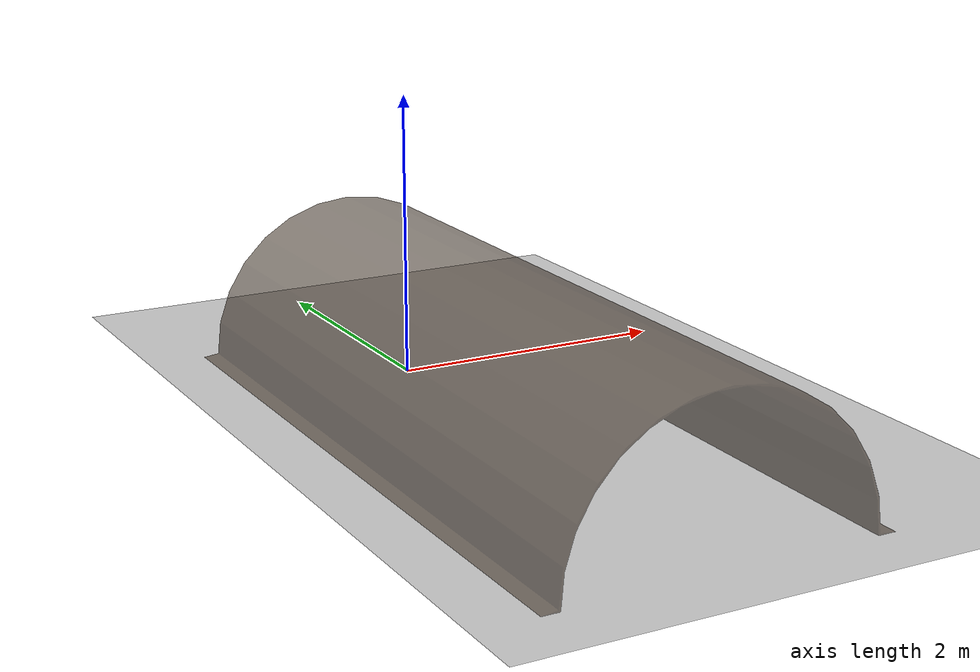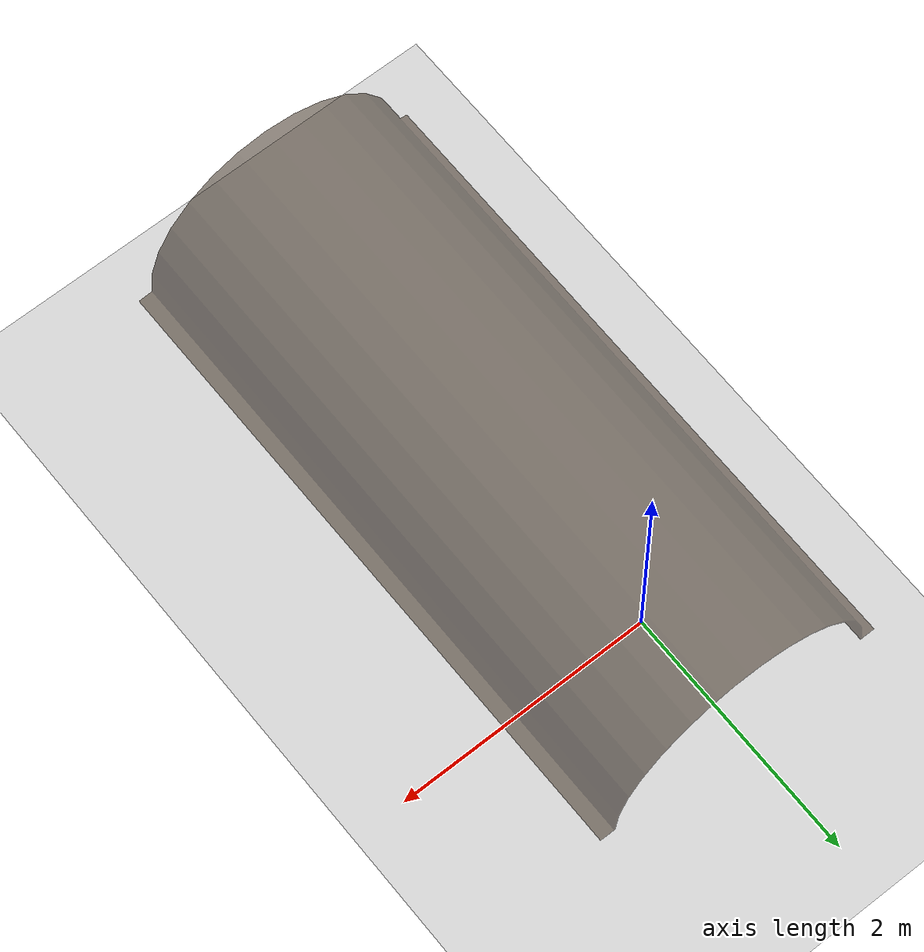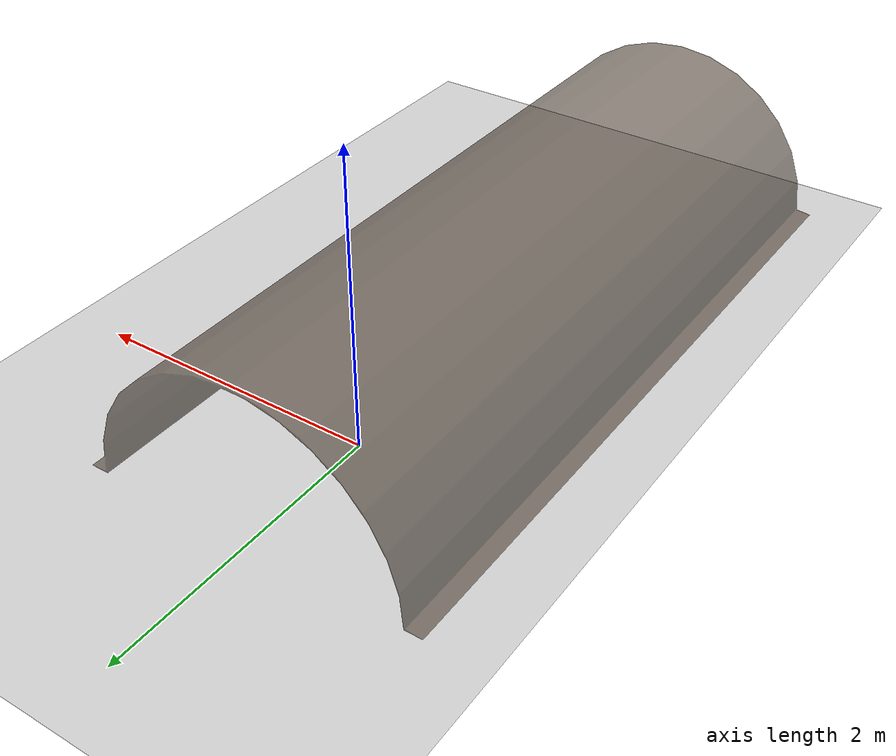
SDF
<sdf version="1.6">
 <world name="default">
  <light name="sun" type="directional">
   <pose>0 0 10 0 -0 0</pose>
   <diffuse>0.8 0.8 0.8 1</diffuse>
   <specular>0.2 0.2 0.2 1</specular>
   <attenuation>
    <range>1000</range>
    <constant>0.9</constant>
    <linear>0.01</linear>
    <quadratic>0.001</quadratic>
   </attenuation>
   <direction>-0.5 0.1 -0.9</direction>
  </light>
  <model name="ground_plane">
   <static>1</static>
   <link name="link">
    <collision name="collision">
     <geometry><plane><normal>0 0 1</normal><size>100 100</size></plane></geometry>
     <surface>
      <contact><collide_bitmask>65535</collide_bitmask></contact>
      <friction><ode><mu>100</mu><mu2>50</mu2></ode></friction>
     </surface>
    </collision>
    <visual name="visual">
     <cast_shadows>0</cast_shadows>
     <geometry><plane><normal>0 0 1</normal><size>100 100</size></plane></geometry>
     <material>
      <script><uri>file://media/materials/scripts/gazebo.material</uri><name>Gazebo/Grey</name></script>
     </material>
    </visual>
   </link>
  </model>
  <gravity>0 0 -9.8</gravity>
  <magnetic_field>6e-06 2.3e-05 -4.2e-05</magnetic_field>
  <atmosphere type="adiabatic"/>
  <physics name="default_physics" default="0" type="ode">
   <max_step_size>0.001</max_step_size>
   <real_time_factor>1</real_time_factor>
   <real_time_update_rate>1000</real_time_update_rate>
  </physics>
  <scene><ambient>0.4 0.4 0.4 1</ambient><background>0.7 0.7 0.7 1</background><shadows>1</shadows></scene>
  <spherical_coordinates>
   <surface_model>EARTH_WGS84</surface_model>
   <latitude_deg>0</latitude_deg>
   <longitude_deg>0</longitude_deg>
   <elevation>0</elevation>
   <heading_deg>0</heading_deg>
  </spherical_coordinates>
  <model name="tubestraight0405">
   <link name="base_link">
    <inertial>
     <pose>2.5 -0.000493 0.64702 0 -0 0</pose>
     <mass>207.32</mass>
     <inertia><ixx>145.66</ixx><ixy>0</ixy><ixz>0</ixz><iyy>456.58</iyy><iyz>0</iyz><izz>552.9</izz></inertia>
    </inertial>
    <visual name="base_link_visual">
     <geometry>
      <mesh><scale>1 1 1</scale><uri>/home/hyh/inexbot/src/tubestraight0405/meshes/base_link.STL</uri></mesh>
     </geometry>
     <material>
      <shader type="pixel"><normal_map>__default__</normal_map></shader>
      <script><name>ModelPreview_1::base_link::base_link_visual_MATERIAL_</name><uri>__default__</uri></script>
      <ambient>0.255 0.105 0.18 0.5</ambient>
      <diffuse>0.255 0.2 0.147 0.6</diffuse>
      <specular>0.199 0.21 0.133 0.7</specular>
      <emissive>0.255 0.182 0.193 0.8</emissive>
     </material>
    </visual>
    <collision name="base_link_collision">
     <geometry>
      <mesh><uri>/home/hyh/inexbot/src/tubestraight0405/meshes/base_link.STL</uri><scale>1 1 1</scale></mesh>
     </geometry>
     <surface>
      <friction>
       <ode><mu>50</mu><mu2>50</mu2><fdir1>0 1 0</fdir1><slip1>0</slip1><slip2>0</slip2></ode>
       <torsional>
        <coefficient>1</coefficient>
        <patch_radius>10</patch_radius>
        <surface_radius>0</surface_radius>
        <use_patch_radius>1</use_patch_radius>
        <ode><slip>0</slip></ode>
       </torsional>
      </friction>
      <bounce><restitution_coefficient>0</restitution_coefficient><threshold>1e+30</threshold></bounce>
      <contact>
       <collide_without_contact>0</collide_without_contact>
       <collide_without_contact_bitmask>1</collide_without_contact_bitmask>
       <collide_bitmask>1</collide_bitmask>
       <ode>
        <soft_cfm>0</soft_cfm>
        <soft_erp>0.2</soft_erp>
        <kp>1e+13</kp>
        <kd>1</kd>
        <max_vel>0</max_vel>
        <min_depth>0</min_depth>
       </ode>
       <bullet>
        <split_impulse>1</split_impulse>
        <split_impulse_penetration_threshold>-0.01</split_impulse_penetration_threshold>
        <soft_cfm>0</soft_cfm>
        <soft_erp>0.2</soft_erp>
        <kp>1e+13</kp>
        <kd>1</kd>
       </bullet>
      </contact>
     </surface>
    </collision>
   </link>
   <joint name="fixed" type="fixed"><child>base_link</child><parent>world</parent></joint>
   <static>0</static>
   <pose>0 -4 0.012 0 -0 1.5708</pose>
  </model>
 </world>
</sdf>
